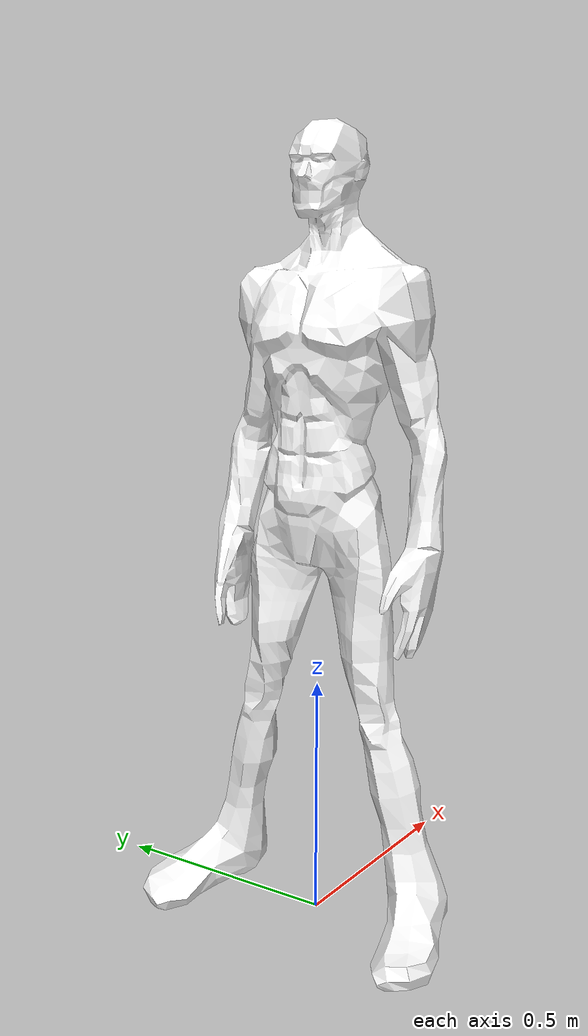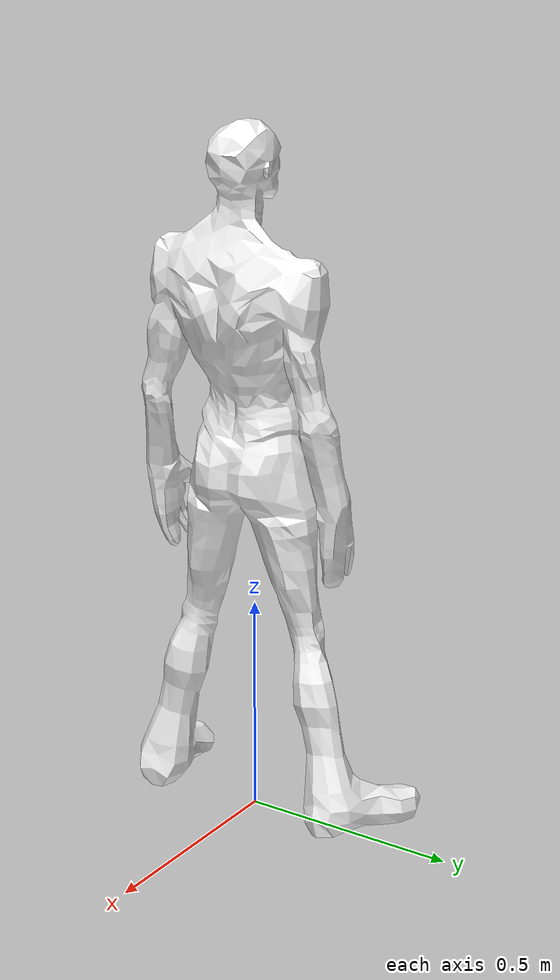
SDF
<?xml version="1.0" ?>
<sdf version="1.6">
  <model name="human">
    <static>true</static>
    <link name="human">
      <pose>0 0 0 0 0 0</pose>
      <collision name="collision">
        <geometry>
          <mesh>
            <uri>model://human/meshes/Human.stl</uri>
            <scale>.3 .3 .3</scale>
          </mesh>
        </geometry>
      </collision>
      <visual name="visual">
        <pose>0 0 1.2 0 0 -1.57</pose>
        <cast_shadows>true</cast_shadows>
        <geometry>
          <mesh>
            <uri>model://human/meshes/Human.stl</uri>
            <scale>.3 .3 .3</scale>
          </mesh>
        </geometry>
        <material name="human_mat">
          <diffuse>1 1 1 1</diffuse>
          <ambient>1 1 1 1</ambient>
          <emmisive>1 1 1 1</emmisive>
          <specular>1 1 0 1</specular>
          <shininess>1</shininess>
          <pbr>
            <metal>
              <metalness>.2</metalness>
            </metal>
          </pbr>
        </material>
        <plugin filename="gz-sim-label-system" name="gz::sim::systems::Label">
          <label>3</label>
        </plugin>
      </visual>
    </link>
  </model>
</sdf>
